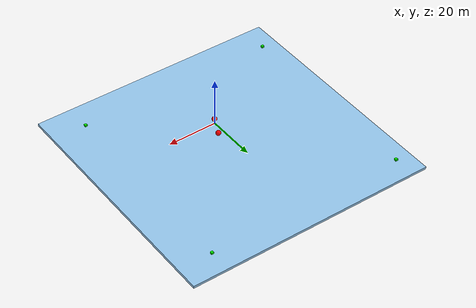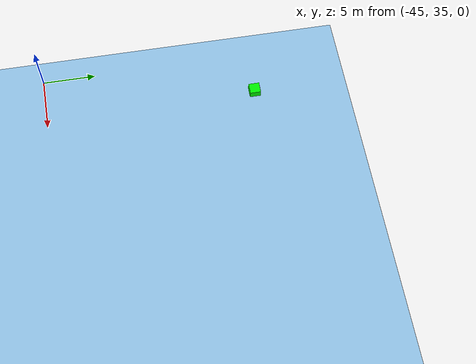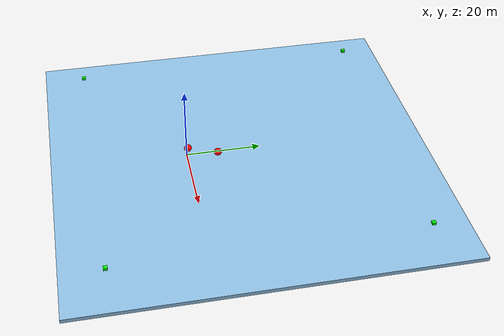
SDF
<sdf version="1.9">
 <world name="sitl">
  <light type="directional" name="sun">
   <pose>0 0 10 0 0 0</pose>
   <diffuse>0.9 0.9 0.9 1</diffuse>
   <specular>0.5 0.5 0.5 1</specular>
   <direction>-0.5 0.1 -0.9</direction>
  </light>
  <physics name="4ms" type="ignored">
   <max_step_size>0.004</max_step_size>
   <real_time_factor>1.0</real_time_factor>
   <dart><solver><solver_type>pgs</solver_type></solver><collision_detector>bullet</collision_detector></dart>
  </physics>
  <plugin name="gz::sim::systems::Physics" filename="ignition-gazebo-physics-system"/>
  <plugin name="gz::sim::systems::UserCommands" filename="ignition-gazebo-user-commands-system"/>
  <plugin name="gz::sim::systems::SceneBroadcaster" filename="ignition-gazebo-scene-broadcaster-system"/>
  <plugin name="gz::sim::systems::Contact" filename="ignition-gazebo-contact-system"/>
  <plugin name="ignition::gazebo::systems::Imu" filename="libignition-gazebo-imu-system.so"/>
  <plugin name="ignition::gazebo::systems::NavSat" filename="ignition-gazebo-navsat-system"/>
  <plugin filename="ignition-gazebo-sensors-system" name="gz::sim::systems::Sensors">
   <render_engine>ogre2</render_engine>
  </plugin>
  <plugin filename="ignition-gazebo-scene-broadcaster-system" name="gz::sim::systems::SceneBroadcaster">
   <state_hertz>125</state_hertz>
   <dynamic_pose_hertz>125</dynamic_pose_hertz>
  </plugin>
  <plugin filename="ignition-gazebo-air-pressure-system" name="gz::sim::systems::AirPressure"/>
  <light type="point" name="ceiling_light_1">
   <cast_shadows>false</cast_shadows>
   <pose>-9.07 6 9 0 0 0</pose>
   <diffuse>0.7 0.7 0.7 1</diffuse>
   <specular>0.1 0.1 0.1 1</specular>
   <attenuation>
    <range>25</range>
    <linear>0.08</linear>
    <constant>0.2</constant>
    <quadratic>0.001</quadratic>
   </attenuation>
  </light>
  <light type="point" name="ceiling_light_2">
   <cast_shadows>false</cast_shadows>
   <pose>9.07 -6 9 0 0 0</pose>
   <diffuse>0.7 0.7 0.7 1</diffuse>
   <specular>0.1 0.1 0.1 1</specular>
   <attenuation>
    <range>25</range>
    <linear>0.08</linear>
    <constant>0.2</constant>
    <quadratic>0.001</quadratic>
   </attenuation>
  </light>
  <light type="point" name="ceiling_light_3">
   <cast_shadows>false</cast_shadows>
   <pose>-9.07 -6 9 0 0 0</pose>
   <diffuse>0.7 0.7 0.7 1</diffuse>
   <specular>0.1 0.1 0.1 1</specular>
   <attenuation>
    <range>25</range>
    <linear>0.08</linear>
    <constant>0.2</constant>
    <quadratic>0.001</quadratic>
   </attenuation>
  </light>
  <light type="point" name="ceiling_light_4">
   <cast_shadows>false</cast_shadows>
   <pose>9.07 6 9 0 0 0</pose>
   <diffuse>0.7 0.7 0.7 1</diffuse>
   <specular>0.1 0.1 0.1 1</specular>
   <attenuation>
    <range>25</range>
    <linear>0.08</linear>
    <constant>0.2</constant>
    <quadratic>0.001</quadratic>
   </attenuation>
  </light>
  <spherical_coordinates>
   <surface_model>EARTH_WGS84</surface_model>
   <world_frame_orientation>ENU</world_frame_orientation>
   <latitude_deg>0.0</latitude_deg>
   <longitude_deg>0.0</longitude_deg>
   <elevation>0</elevation>
   <heading_deg>0</heading_deg>
  </spherical_coordinates>
  <include><uri>model://red_balloon</uri><name>red_balloon1</name><pose>0.44 0.27 2.6 0 0 0</pose></include>
  <include><uri>model://red_balloon</uri><name>red_balloon2</name><pose>4 7.8 3 0 0 0</pose></include>
  <include><uri>model://green_box</uri><name>box1</name><pose>-40 -25 1.5 0 0 0</pose></include>
  <include><uri>model://green_box</uri><name>box2</name><pose>-40 55 1.5 0 0 0</pose></include>
  <include><uri>model://green_box</uri><name>box3</name><pose>40 -25 1.5 0 0 0</pose></include>
  <include><uri>model://green_box</uri><name>box4</name><pose>40 55 1.5 0 0 0</pose></include>
  <model name="plane">
   <static>1</static>
   <pose>3.60000 13.90000 0.80000 0 0 0</pose>
   <link name="link">
    <collision name="collision"><geometry><box><size>100 100 1</size></box></geometry></collision>
    <visual name="visual">
     <geometry><box><size>100 100 1</size></box></geometry>
     <material>
      <ambient>0.6 0.8 0.95 1.0</ambient>
      <diffuse>0.6 0.8 0.95 1.0</diffuse>
      <specular>0.1 0.1 0.1 1.0</specular>
     </material>
    </visual>
   </link>
  </model>
  <plugin name="gz::sim" filename="dummy"/>
 </world>
</sdf>

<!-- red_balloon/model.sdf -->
<sdf version="1.9">
  <model name='red_balloon'>
    <static>1</static>
    <pose>0 0 4 0 0 0</pose>
    <link name='link'>
      <collision name="collision">
        <geometry>
          <sphere>
            <radius>1</radius>
          </sphere>
        </geometry>
      </collision>
      <visual name="visual">
        <geometry>
          <sphere>
            <radius>1</radius>
          </sphere>
        </geometry>
        <material>
          <ambient>1 0 0 1</ambient>
          <diffuse>1 0 0 1</diffuse>
          <specular>0.1 0.1 0.1 1</specular>
        </material>
      </visual>
    </link>
  </model>
</sdf>

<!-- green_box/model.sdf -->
<sdf version="1.9">
  <model name='green_box'>
    <static>1</static>
    <pose>0 0 0 0 0 0</pose>
    <link name='link'>
      <collision name="collision">
        <geometry>
          <box>
            <size>1 1 1</size>
          </box>
        </geometry>
      </collision>
      <visual name="visual">
        <geometry>
          <box>
            <size>1 1 1</size>
          </box>
        </geometry>
        <material>
          <ambient>0 1 0 1</ambient>
          <diffuse>0 1 0 1</diffuse>
          <specular>0.1 0.1 0.1 1</specular>
        </material>
      </visual>
    </link>
  </model>
</sdf>
